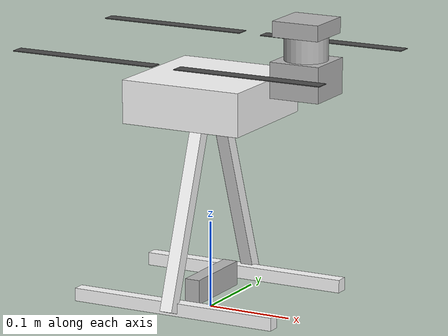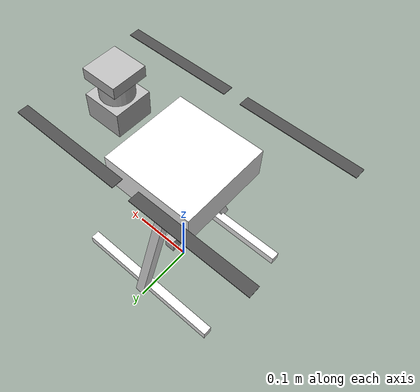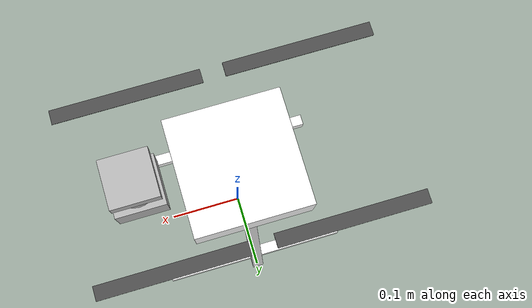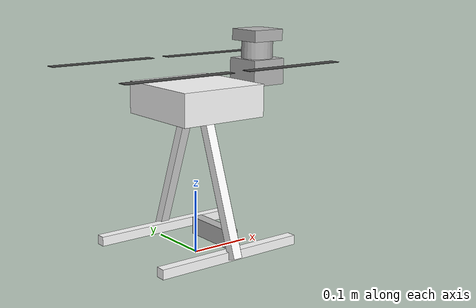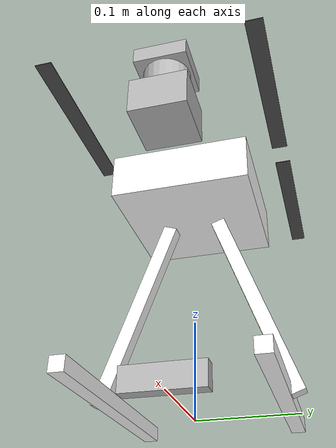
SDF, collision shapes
<?xml version="1.0" encoding="UTF-8"?>
<sdf version='1.9'>
  <model name='x290_mono_cam_down_lidar_3d_depth'>
    <self_collide>false</self_collide>
    <include merge='true'>
      <uri>x290</uri>
    </include>
    <include merge='true'>
      <uri>model://mono_cam</uri>
      <pose>0 0 .10 0 1.5707 0</pose>
      <name>mono_cam</name>
    </include>
    <joint name="Mono_CameraJoint" type="fixed">
      <parent>base_link</parent>
      <child>camera_link</child>
      <pose relative_to="base_link">0 0 0 0 1.5707 0</pose>
    </joint>
    <include merge='true'>
      <uri>model://lidar_3d_v2</uri>
      <pose>.12 0 .26 0 0 0</pose>
    </include>
    <joint name="LidarJoint" type="fixed">
      <parent>base_link</parent>
      <child>link</child>
      <pose relative_to="base_link">-.01 0 .026 0 0 0</pose>
    </joint>
    <include merge='true'>
      <uri>model://OakD-Lite</uri>
      <pose>.012 .003 .0242 0 0 0</pose>
    </include>
    <joint name="Depth_CameraJoint" type="fixed">
      <parent>base_link</parent>
      <child>camera_link</child>
      <pose relative_to="base_link">.12 .03 .242 0 0 0</pose>
    </joint>
  </model>
</sdf>

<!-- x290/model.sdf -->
<sdf version='1.9'>
  <model name='x290'>
    <include merge='true'>
      <uri>model://x290_base</uri>
    </include>
    <plugin filename="gz-sim-multicopter-motor-model-system"
      name="gz::sim::systems::MulticopterMotorModel">
      <jointName>rotor_0_joint</jointName>
      <linkName>rotor_0</linkName>
      <turningDirection>ccw</turningDirection>
      <timeConstantUp>0.0125</timeConstantUp>
      <timeConstantDown>0.025</timeConstantDown>
      <maxRotVelocity>1000.0</maxRotVelocity>
      <motorConstant>8.54858e-06</motorConstant>
      <momentConstant>0.016</momentConstant>
      <commandSubTopic>command/motor_speed</commandSubTopic>
      <motorNumber>0</motorNumber>
      <rotorDragCoefficient>8.06428e-05</rotorDragCoefficient>
      <rollingMomentCoefficient>1e-06</rollingMomentCoefficient>
      <rotorVelocitySlowdownSim>10</rotorVelocitySlowdownSim>
      <motorType>velocity</motorType>
    </plugin>
    <plugin filename="gz-sim-multicopter-motor-model-system"
      name="gz::sim::systems::MulticopterMotorModel">
      <jointName>rotor_1_joint</jointName>
      <linkName>rotor_1</linkName>
      <turningDirection>ccw</turningDirection>
      <timeConstantUp>0.0125</timeConstantUp>
      <timeConstantDown>0.025</timeConstantDown>
      <maxRotVelocity>1000.0</maxRotVelocity>
      <motorConstant>8.54858e-06</motorConstant>
      <momentConstant>0.016</momentConstant>
      <commandSubTopic>command/motor_speed</commandSubTopic>
      <motorNumber>1</motorNumber>
      <rotorDragCoefficient>8.06428e-05</rotorDragCoefficient>
      <rollingMomentCoefficient>1e-06</rollingMomentCoefficient>
      <rotorVelocitySlowdownSim>10</rotorVelocitySlowdownSim>
      <motorType>velocity</motorType>
    </plugin>
    <plugin filename="gz-sim-multicopter-motor-model-system"
      name="gz::sim::systems::MulticopterMotorModel">
      <jointName>rotor_2_joint</jointName>
      <linkName>rotor_2</linkName>
      <turningDirection>cw</turningDirection>
      <timeConstantUp>0.0125</timeConstantUp>
      <timeConstantDown>0.025</timeConstantDown>
      <maxRotVelocity>1000.0</maxRotVelocity>
      <motorConstant>8.54858e-06</motorConstant>
      <momentConstant>0.016</momentConstant>
      <commandSubTopic>command/motor_speed</commandSubTopic>
      <motorNumber>2</motorNumber>
      <rotorDragCoefficient>8.06428e-05</rotorDragCoefficient>
      <rollingMomentCoefficient>1e-06</rollingMomentCoefficient>
      <rotorVelocitySlowdownSim>10</rotorVelocitySlowdownSim>
      <motorType>velocity</motorType>
    </plugin>
    <plugin filename="gz-sim-multicopter-motor-model-system"
      name="gz::sim::systems::MulticopterMotorModel">
      <jointName>rotor_3_joint</jointName>
      <linkName>rotor_3</linkName>
      <turningDirection>cw</turningDirection>
      <timeConstantUp>0.0125</timeConstantUp>
      <timeConstantDown>0.025</timeConstantDown>
      <maxRotVelocity>1000.0</maxRotVelocity>
      <motorConstant>8.54858e-06</motorConstant>
      <momentConstant>0.016</momentConstant>
      <commandSubTopic>command/motor_speed</commandSubTopic>
      <motorNumber>3</motorNumber>
      <rotorDragCoefficient>8.06428e-05</rotorDragCoefficient>
      <rollingMomentCoefficient>1e-06</rollingMomentCoefficient>
      <rotorVelocitySlowdownSim>10</rotorVelocitySlowdownSim>
      <motorType>velocity</motorType>
    </plugin>
  </model>
</sdf>

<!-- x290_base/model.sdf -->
<sdf version='1.9'>
  <model name='x290_base'>
    <pose>0 0 .24 0 0 0</pose>
    <self_collide>false</self_collide>
    <static>false</static>
    <link name="base_link">
      <inertial>
        <mass>2.0</mass>
        <inertia>
          <ixx>0.02166666666666667</ixx>
          <ixy>0</ixy>
          <ixz>0</ixz>
          <iyy>0.02166666666666667</iyy>
          <iyz>0</iyz>
          <izz>0.04000000000000001</izz>
        </inertia>
      </inertial>
      <gravity>true</gravity>
      <velocity_decay />
      <visual name="base_link_visual">
        <pose>0 0 .025 0 0 3.141592654</pose>
        <geometry>
          <mesh>
            <scale>0.58 0.58 0.58</scale>
            <uri>model://x500_base/meshes/NXP-HGD-CF.dae</uri>
          </mesh>
        </geometry>
      </visual>
      <visual name="5010_motor_base_0">
        <pose>0.1025 0.1025 .032 0 0 -.45</pose>
        <geometry>
          <mesh>
            <scale>1 1 1</scale>
            <uri>model://x500_base/meshes/5010Base.dae</uri>
          </mesh>
        </geometry>
      </visual>
      <visual name="5010_motor_base_1">
        <pose>-0.1025 0.1025 .032 0 0 -.45</pose>
        <geometry>
          <mesh>
            <scale>1 1 1</scale>
            <uri>model://x500_base/meshes/5010Base.dae</uri>
          </mesh>
        </geometry>
      </visual>
      <visual name="5010_motor_base_2">
        <pose>0.1025 -0.1025 .032 0 0 -.45</pose>
        <geometry>
          <mesh>
            <scale>1 1 1</scale>
            <uri>model://x500_base/meshes/5010Base.dae</uri>
          </mesh>
        </geometry>
      </visual>
      <visual name="5010_motor_base_3">
        <pose>-0.1025 -0.1025 .032 0 0 -.45</pose>
        <geometry>
          <mesh>
            <scale>1 1 1</scale>
            <uri>model://x500_base/meshes/5010Base.dae</uri>
          </mesh>
        </geometry>
      </visual>
      <visual name="NXP_FMUK66_FRONT">
        <pose>0.047 .001 .043 1 0 1.57</pose>
        <cast_shadows>false</cast_shadows>
        <geometry>
          <plane>
            <normal>0 0 1</normal>
            <size>.013 .007</size>
          </plane>
        </geometry>
        <material>
          <diffuse>1.0 1.0 1.0</diffuse>
          <specular>1.0 1.0 1.0</specular>
          <pbr>
            <metal>
              <albedo_map>model://x500_base/materials/textures/nxp.png</albedo_map>
            </metal>
          </pbr>
        </material>
      </visual>
      <visual name="NXP_FMUK66_TOP">
        <pose>-0.023 0 .0515 0 0 -1.57</pose>
        <cast_shadows>false</cast_shadows>
        <geometry>
          <plane>
            <normal>0 0 1</normal>
            <size>.013 .007</size>
          </plane>
        </geometry>
        <material>
          <diffuse>1.0 1.0 1.0</diffuse>
          <specular>1.0 1.0 1.0</specular>
          <pbr>
            <metal>
              <albedo_map>model://x500_base/materials/textures/nxp.png</albedo_map>
            </metal>
          </pbr>
        </material>
      </visual>
      <visual name="RDDRONE_FMUK66_TOP">
        <pose>-.03 0 .0515 0 0 -1.57</pose>
        <cast_shadows>false</cast_shadows>
        <geometry>
          <plane>
            <normal>0 0 1</normal>
            <size>.032 .0034</size>
          </plane>
        </geometry>
        <material>
          <diffuse>1.0 1.0 1.0</diffuse>
          <specular>1.0 1.0 1.0</specular>
          <pbr>
            <metal>
              <albedo_map>model://x500_base/materials/textures/rd.png</albedo_map>
            </metal>
          </pbr>
        </material>
      </visual>
      <collision name="base_link_collision_0">
        <pose>0 0 .007 0 0 0</pose>
        <geometry>
          <box>
            <size>0.1456 0.1456 0.05</size>
          </box>
        </geometry>
        <surface>
          <contact>
            <ode>
              <min_depth>0.001</min_depth>
              <max_vel>0</max_vel>
            </ode>
          </contact>
          <friction>
            <ode />
          </friction>
        </surface>
      </collision>
      <collision name="base_link_collision_1">
        <pose>0 -0.063 -.123 -0.35 0 0</pose>
        <geometry>
          <box>
            <size>0.015 0.015 0.21</size>
          </box>
        </geometry>
        <surface>
          <contact>
            <ode>
              <min_depth>0.001</min_depth>
              <max_vel>0</max_vel>
            </ode>
          </contact>
          <friction>
            <ode />
          </friction>
        </surface>
      </collision>
      <collision name="base_link_collision_2">
        <pose>0 0.063 -.123 0.35 0 0</pose>
        <geometry>
          <box>
            <size>0.015 0.015 0.21</size>
          </box>
        </geometry>
        <surface>
          <contact>
            <ode>
              <min_depth>0.001</min_depth>
              <max_vel>0</max_vel>
            </ode>
          </contact>
          <friction>
            <ode />
          </friction>
        </surface>
      </collision>
      <collision name="base_link_collision_3">
        <pose>0 -0.085 -.2195 0 0 0</pose>
        <geometry>
          <box>
            <size>0.25 0.015 0.015</size>
          </box>
        </geometry>
        <surface>
          <contact>
            <ode>
              <min_depth>0.001</min_depth>
              <max_vel>0</max_vel>
            </ode>
          </contact>
          <friction>
            <ode />
          </friction>
        </surface>
      </collision>
      <collision name="base_link_collision_4">
        <pose>0 0.085 -.2195 0 0 0</pose>
        <geometry>
          <box>
            <size>0.25 0.015 0.015</size>
          </box>
        </geometry>
        <surface>
          <contact>
            <ode>
              <min_depth>0.001</min_depth>
              <max_vel>0</max_vel>
            </ode>
          </contact>
          <friction>
            <ode />
          </friction>
        </surface>
      </collision>
      <sensor name="air_pressure_sensor" type="air_pressure">
        <gz_frame_id>base_link</gz_frame_id>
        <always_on>1</always_on>
        <update_rate>50</update_rate>
        <air_pressure>
          <pressure>
            <noise type="gaussian">
              <mean>0</mean>
              <stddev>3</stddev>
            </noise>
          </pressure>
        </air_pressure>
      </sensor>
      <sensor name="magnetometer_sensor" type="magnetometer">
        <gz_frame_id>base_link</gz_frame_id>
        <always_on>1</always_on>
        <update_rate>100</update_rate>
        <magnetometer>
          <x>
            <noise type="gaussian">
              <stddev>0.0001</stddev>
            </noise>
          </x>
          <y>
            <noise type="gaussian">
              <stddev>0.0001</stddev>
            </noise>
          </y>
          <z>
            <noise type="gaussian">
              <stddev>0.0001</stddev>
            </noise>
          </z>
        </magnetometer>
      </sensor>
      <sensor name="imu_sensor" type="imu">
        <gz_frame_id>base_link</gz_frame_id>
        <always_on>1</always_on>
        <update_rate>250</update_rate>
        <imu>
          <angular_velocity>
            <x>
              <noise type="gaussian">
                <mean>0.0</mean>
                <stddev>0.0008726646</stddev>
              </noise>
            </x>
            <y>
              <noise type="gaussian">
                <mean>0.0</mean>
                <stddev>0.0008726646</stddev>
              </noise>
            </y>
            <z>
              <noise type="gaussian">
                <mean>0.0</mean>
                <stddev>0.0008726646</stddev>
              </noise>
            </z>
          </angular_velocity>
          <linear_acceleration>
            <x>
              <noise type="gaussian">
                <mean>0.0</mean>
                <stddev>0.00637</stddev>
              </noise>
            </x>
            <y>
              <noise type="gaussian">
                <mean>0.0</mean>
                <stddev>0.00637</stddev>
              </noise>
            </y>
            <z>
              <noise type="gaussian">
                <mean>0.0</mean>
                <stddev>0.00686</stddev>
              </noise>
            </z>
          </linear_acceleration>
        </imu>
      </sensor>
      <sensor name="navsat_sensor" type="navsat">
        <gz_frame_id>base_link</gz_frame_id>
        <always_on>1</always_on>
        <update_rate>30</update_rate>
      </sensor>
    </link>

    <link name="rotor_0">
      <gravity>true</gravity>
      <self_collide>false</self_collide>
      <velocity_decay />
      <pose>0.1025 -0.1025 0.06 0 0 0</pose>
      <inertial>
        <mass>0.006076923076923075</mass>
        <inertia>
          <ixx>3.8464910483993325e-07</ixx>
          <iyy>2.6115851691700804e-05</iyy>
          <izz>2.649858234714004e-05</izz>
        </inertia>
      </inertial>
      <visual name="rotor_0_visual">
        <pose>-0.022 -0.089 -0.016 0 0 0</pose>
        <geometry>
          <mesh>
            <scale>0.455738461538461 0.455738461538461 0.455738461538461</scale>
            <uri>model://x500_base/meshes/1345_prop_ccw.stl</uri>
          </mesh>
        </geometry>
        <material>
          <script>
            <name>Gazebo/DarkGrey</name>
            <uri>file://media/materials/scripts/gazebo.material</uri>
          </script>
        </material>
      </visual>
      <visual name="rotor_0_visual_motor_bell">
        <pose>0 0 -.032 0 0 0</pose>
        <geometry>
          <mesh>
            <scale>1 1 1</scale>
            <uri>model://x500_base/meshes/5010Bell.dae</uri>
          </mesh>
        </geometry>
      </visual>
      <collision name="rotor_0_collision">
        <pose>0 0 0 0 0 0 </pose>
        <geometry>
          <box>
            <size>0.178 0.016923076923076923 0.0008461538461538462</size>
          </box>
        </geometry>
        <surface>
          <contact>
            <ode>
              <min_depth>0.001</min_depth>
              <max_vel>0</max_vel>
            </ode>
          </contact>
          <friction>
            <ode />
          </friction>
        </surface>
      </collision>
    </link>
    <joint name="rotor_0_joint" type="revolute">
      <parent>base_link</parent>
      <child>rotor_0</child>
      <axis>
        <xyz>0 0 1</xyz>
        <limit>
          <lower>-1e+16</lower>
          <upper>1e+16</upper>
        </limit>
        <dynamics>
          <spring_reference>0</spring_reference>
          <spring_stiffness>0</spring_stiffness>
        </dynamics>
      </axis>
    </joint>

    <link name="rotor_1">
      <gravity>true</gravity>
      <self_collide>false</self_collide>
      <velocity_decay />
      <pose>-0.1025 0.1025 0.06 0 0 0</pose>
      <inertial>
        <mass>0.006076923076923075</mass>
        <inertia>
          <ixx>3.8464910483993325e-07</ixx>
          <iyy>2.6115851691700804e-05</iyy>
          <izz>2.649858234714004e-05</izz>
        </inertia>
      </inertial>
      <visual name="rotor_1_visual">
        <pose>-0.022 -0.089 -0.016 0 0 0</pose>
        <geometry>
          <mesh>
            <scale>0.455738461538461 0.455738461538461 0.455738461538461</scale>
            <uri>model://x500_base/meshes/1345_prop_ccw.stl</uri>
          </mesh>
        </geometry>
        <material>
          <script>
            <name>Gazebo/DarkGrey</name>
            <uri>file://media/materials/scripts/gazebo.material</uri>
          </script>
        </material>
      </visual>
      <visual name="rotor_1_visual_motor_top">
        <pose>0 0 -.032 0 0 0</pose>
        <geometry>
          <mesh>
            <scale>1 1 1</scale>
            <uri>model://x500_base/meshes/5010Bell.dae</uri>
          </mesh>
        </geometry>
      </visual>
      <collision name="rotor_1_collision">
        <pose>0 0 0 0 0 0 </pose>
        <geometry>
          <box>
            <size>0.178307692307692 0.016923076923076923 0.0008461538461538462</size>
          </box>
        </geometry>
        <surface>
          <contact>
            <ode>
              <min_depth>0.001</min_depth>
              <max_vel>0</max_vel>
            </ode>
          </contact>
          <friction>
            <ode />
          </friction>
        </surface>
      </collision>
    </link>
    <joint name="rotor_1_joint" type="revolute">
      <parent>base_link</parent>
      <child>rotor_1</child>
      <axis>
        <xyz>0 0 1</xyz>
        <limit>
          <lower>-1e+16</lower>
          <upper>1e+16</upper>
        </limit>
        <dynamics>
          <spring_reference>0</spring_reference>
          <spring_stiffness>0</spring_stiffness>
        </dynamics>
      </axis>
    </joint>

    <link name="rotor_2">
      <gravity>true</gravity>
      <self_collide>false</self_collide>
      <velocity_decay />
      <pose>0.1025 0.1025 0.06 0 0 0</pose>
      <inertial>
        <mass>0.006076923076923075</mass>
        <inertia>
          <ixx>3.8464910483993325e-07</ixx>
          <iyy>2.6115851691700804e-05</iyy>
          <izz>2.649858234714004e-05</izz>
        </inertia>
      </inertial>
      <visual name="rotor_2_visual">
        <pose>-0.022 -0.089 -0.016 0 0 0</pose>
        <geometry>
          <mesh>
            <scale>0.455738461538461 0.455738461538461 0.455738461538461</scale>
            <uri>model://x500_base/meshes/1345_prop_cw.stl</uri>
          </mesh>
        </geometry>
        <material>
          <script>
            <name>Gazebo/DarkGrey</name>
            <uri>file://media/materials/scripts/gazebo.material</uri>
          </script>
        </material>
      </visual>
      <visual name="rotor_2_visual_motor_top">
        <pose>0 0 -.032 0 0 0</pose>
        <geometry>
          <mesh>
            <scale>1 1 1</scale>
            <uri>model://x500_base/meshes/5010Bell.dae</uri>
          </mesh>
        </geometry>
      </visual>
      <collision name="rotor_2_collision">
        <pose>0 0 0 0 0 0 </pose>
        <geometry>
          <box>
            <size>0.178307692307692 0.016923076923076923 0.0008461538461538462</size>
          </box>
        </geometry>
        <surface>
          <contact>
            <ode>
              <min_depth>0.001</min_depth>
              <max_vel>0</max_vel>
            </ode>
          </contact>
          <friction>
            <ode />
          </friction>
        </surface>
      </collision>
    </link>
    <joint name="rotor_2_joint" type="revolute">
      <parent>base_link</parent>
      <child>rotor_2</child>
      <axis>
        <xyz>0 0 1</xyz>
        <limit>
          <lower>-1e+16</lower>
          <upper>1e+16</upper>
        </limit>
        <dynamics>
          <spring_reference>0</spring_reference>
          <spring_stiffness>0</spring_stiffness>
        </dynamics>
      </axis>
    </joint>

    <link name="rotor_3">
      <gravity>true</gravity>
      <self_collide>false</self_collide>
      <velocity_decay />
      <pose>-0.1025 -0.1025 0.06 0 0 0</pose>
      <inertial>
        <mass>0.006076923076923075</mass>
        <inertia>
          <ixx>3.8464910483993325e-07</ixx>
          <iyy>2.6115851691700804e-05</iyy>
          <izz>2.649858234714004e-05</izz>
        </inertia>
      </inertial>
      <visual name="rotor_3_visual">
        <pose>-0.022 -0.089 -0.016 0 0 0</pose>
        <geometry>
          <mesh>
            <scale>0.455738461538461 0.455738461538461 0.455738461538461</scale>
            <uri>model://x500_base/meshes/1345_prop_cw.stl</uri>
          </mesh>
        </geometry>
        <material>
          <script>
            <name>Gazebo/DarkGrey</name>
            <uri>file://media/materials/scripts/gazebo.material</uri>
          </script>
        </material>
      </visual>
      <visual name="rotor_3_visual_motor_top">
        <pose>0 0 -.032 0 0 0</pose>
        <geometry>
          <mesh>
            <scale>1 1 1</scale>
            <uri>model://x500_base/meshes/5010Bell.dae</uri>
          </mesh>
        </geometry>
      </visual>
      <collision name="rotor_3_collision">
        <pose>0 0 0 0 0 0 </pose>
        <geometry>
          <box>
            <size>0.178307692307692 0.016923076923076923 0.0008461538461538462</size>
          </box>
        </geometry>
        <surface>
          <contact>
            <ode>
              <min_depth>0.001</min_depth>
              <max_vel>0</max_vel>
            </ode>
          </contact>
          <friction>
            <ode />
          </friction>
        </surface>
      </collision>
    </link>
    <joint name="rotor_3_joint" type="revolute">
      <parent>base_link</parent>
      <child>rotor_3</child>
      <axis>
        <xyz>0 0 1</xyz>
        <limit>
          <lower>-1e+16</lower>
          <upper>1e+16</upper>
        </limit>
        <dynamics>
          <spring_reference>0</spring_reference>
          <spring_stiffness>0</spring_stiffness>
        </dynamics>
      </axis>
    </joint>
  </model>
</sdf>

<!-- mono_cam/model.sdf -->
<sdf version='1.9'>
  <model name='mono_cam'>
    <pose>0 0 0 0 0 0</pose>
    <self_collide>false</self_collide>
    <static>false</static>
    <link name="mono_cam/base_link">
      <inertial>
        <pose>0.03 0.03 0.03 0 0 0</pose>
        <mass>0.050</mass>
        <inertia>
          <ixx>0.00004</ixx>
          <ixy>0</ixy>
          <ixz>0</ixz>
          <iyy>0.00004</iyy>
          <iyz>0</iyz>
          <izz>0.00004</izz>
        </inertia>
      </inertial>
      <sensor name="imager" type="camera">
        <pose>0 0 0 0 0 0</pose>
        <camera>
          <horizontal_fov>1.74</horizontal_fov>
          <image>
            <width>1280</width>
            <height>720</height>
          </image>
          <clip>
            <near>0.1</near>
            <far>3000</far>
          </clip>
        </camera>
        <always_on>1</always_on>
        <update_rate>30</update_rate>
        <visualize>true</visualize>
      </sensor>
      <gravity>true</gravity>
      <velocity_decay/>
    </link>
  </model>
</sdf>

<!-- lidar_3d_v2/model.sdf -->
<sdf version="1.6">
  <model name="lidar_3d_v2"> <!-- 模型名改为 lidar_3d_v2，语义更清晰 -->
    <link name="link">
      <pose>0 0 0 0 0 0</pose>
      <inertial>
        <pose>0 0 0.0435 0 0 0</pose>
        <mass>0.37</mass>
        <inertia>
          <ixx>0.00034437749999999994</ixx>
          <ixy>0</ixy>
          <ixz>0</ixz>
          <iyy>0.00034437749999999994</iyy>
          <iyz>0</iyz>
          <izz>0.00022199999999999998</izz>
        </inertia>
      </inertial>

      <!-- 碰撞体保持不变 -->
      <collision name="collision_base">
        <pose>0 0 0.0205 0 0 0</pose>
        <geometry>
          <box>
            <size>0.06 0.06 0.041</size>
          </box>
        </geometry>
      </collision>
      <collision name="collision_mid">
        <pose>0 0 0.055 0 0 0</pose>
        <geometry>
          <cylinder>
            <radius>0.025</radius>
            <length>0.028</length>
          </cylinder>
        </geometry>
      </collision>
      <collision name="collision_top">
        <pose>0 0 0.078 0 0 0</pose>
        <geometry>
          <box>
            <size>0.056 0.056 0.018</size>
          </box>
        </geometry>
      </collision>

      <!-- 视觉网格保持不变 -->
      <visual name="visual">
        <geometry>
          <mesh>
            <uri>model://lidar_2d_v2/meshes/lidar_2d_v2.dae</uri>
          </mesh>
        </geometry>
      </visual>

      <!-- ⭐⭐⭐ 重点修改：将 2D LiDAR 改为 3D LiDAR ⭐⭐⭐ -->
      <sensor name="lidar_3d_v2" type="gpu_lidar"> <!-- 传感器名同步更新 -->
        <gz_frame_id>link</gz_frame_id>
        <pose>0 0 0.055 0 0 0</pose>
        <topic>lidar_points</topic> <!-- ⚠️ 改为 PointCloud2 话题，不再是 scan -->
        <point_cloud>true</point_cloud>

        <ray>
          <scan>
            <!-- 水平扫描（方位角）：保持原设置 -->
            <horizontal>
              <samples>1080</samples>
              <resolution>1</resolution>
              <min_angle>-2.356195</min_angle>
              <max_angle>2.356195</max_angle>
            </horizontal>

            <!-- ✅ 新增：垂直扫描（俯仰角）——这是实现 3D 的关键！ -->
            <vertical>
              <samples>32</samples>            <!-- 垂直方向 32 线（类似 VLP-32 mid-360） -->
              <resolution>1</resolution>
              <min_angle>-0.4851</min_angle>   <!-- -15° (弧度) -->
              <max_angle>0.5550</max_angle>    <!-- +15° (弧度) -->
            </vertical>
          </scan>

          <range>
            <min>0.1</min>
            <max>30</max>
            <resolution>0.01</resolution>
          </range>

          <noise>
            <type>gaussian</type>
            <mean>0.0</mean>
            <stddev>0.015</stddev>
          </noise>
        </ray>

        <!-- ⚙️ 优化参数：3D 点云数据量大，建议调整 -->
        <always_on>1</always_on>     <!-- ✅ 改为 1：持续运行 -->
        <update_rate>10</update_rate> <!-- ✅ 降低频率：30 → 10 Hz，避免卡顿 -->
        <visualize>true</visualize>  <!-- ✅ 改为 true：可在 Gazebo 中看到 3D 射线 -->
      </sensor>
    </link>
  </model>
</sdf>

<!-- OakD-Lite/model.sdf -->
<sdf version='1.9'>
  <model name='OakD-Lite'>
    <pose>0 0 0 0 0 0</pose>
    <self_collide>false</self_collide>
    <static>false</static>
    <link name="camera_link">
      <inertial>
        <pose>0.00358 -0.03 .014 0 0 0</pose>
        <mass>0.061</mass>
        <inertia>
          <ixx>0.0000460804</ixx>
          <ixy>0</ixy>
          <ixz>0</ixz>
          <iyy>0.0000055421</iyy>
          <iyz>0</iyz>
          <izz>0.0000436519</izz>
        </inertia>
      </inertial>
      <visual name="OakD-Lite/visual">
        <pose>0 0 0 0 0 0</pose>
        <geometry>
          <mesh>
            <scale>1 1 1</scale>
            <uri>model://OakD-Lite/meshes/OakDLite.dae</uri>
          </mesh>
        </geometry>
      </visual>
      <collision name="OakD-Lite/collision">
        <pose>0.00358 -0.03 .014 0 0 0</pose>
        <geometry>
          <box>
            <size>0.0175 0.091 0.028</size>
          </box>
        </geometry>
      </collision>
      <sensor name="IMX214" type="camera">
        <pose>0.01233 -0.03 .01878 0 0 0</pose>
        <camera>
          <horizontal_fov>1.204</horizontal_fov>
          <image>
            <width>1920</width>
            <height>1080</height>
          </image>
          <clip>
            <near>0.1</near>
            <far>100</far>
          </clip>
        </camera>
        <always_on>1</always_on>
        <update_rate>30</update_rate>
        <visualize>true</visualize>
      </sensor>
      <sensor name="StereoOV7251" type="depth_camera">
        <pose>0.01233 -0.03 .01878 0 0 0</pose>
        <camera>
          <horizontal_fov>1.274</horizontal_fov>
          <image>
            <width>640</width>
            <height>480</height>
            <format>R_FLOAT32</format>
          </image>
          <clip>
            <near>0.2</near>
            <far>19.1</far>
          </clip>
        </camera>
        <always_on>1</always_on>
        <update_rate>30</update_rate>
        <visualize>true</visualize>
        <topic>depth_camera</topic>
      </sensor>
      <gravity>true</gravity>
      <velocity_decay/>
    </link>
  </model>
</sdf>
